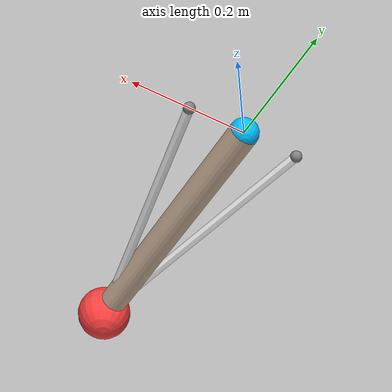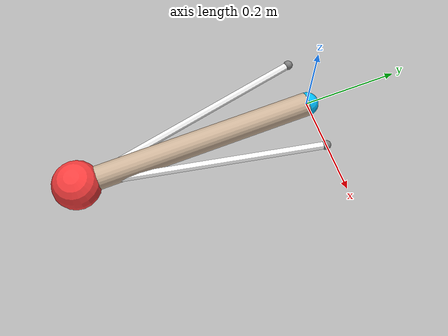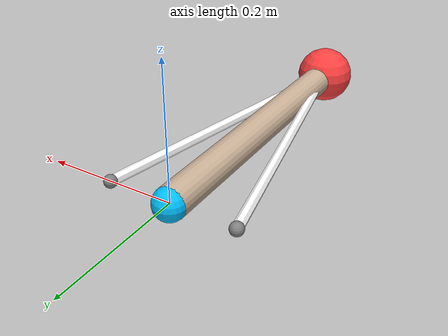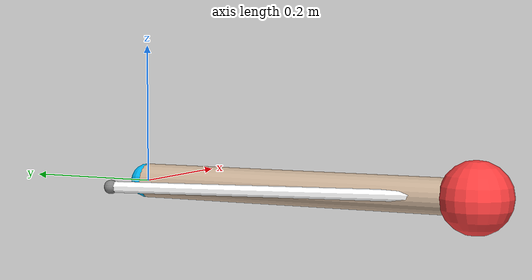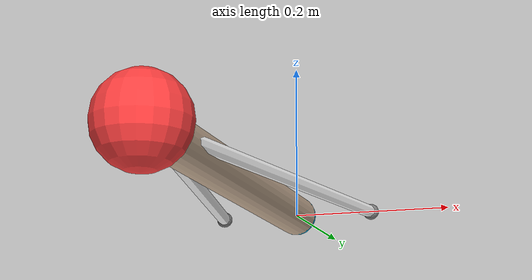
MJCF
<mujoco model="one-joint-arm">

  <visual>
    <map force="0.1" zfar="30" />
    <rgba haze="0 0 0 1" />
    <global offwidth="1920" offheight="1080" elevation="-90" azimuth="0" />
    <quality shadowsize="2048" />
    <headlight ambient="0.3 0.3 0.3" diffuse="0.8 0.8 0.8" specular="0.4 0.4 0.4"/>
  </visual>

  <asset>
    <material name="arm_mat" rgba="0.8 0.7 0.6 1" specular="0.1" shininess="0.1" reflectance="0"/>
    <material name="tendon_mat" rgba="1 1 1 1" specular="0" shininess="0" reflectance="0" emission="0.2"/>
  </asset>

  <default>
    <joint damping="0.1" />
    <muscle ctrllimited="true" ctrlrange="0 1" />
    <geom material="arm_mat" />
    <tendon material="tendon_mat" />
  </default>

  <worldbody>
    <camera name="top" mode="fixed" pos="0 0 3.5" euler="0 0 0" fovy="30"/>

    <!-- TRUNK -->
    <body name="trunk" pos="0 0 0">
      <site name="muscle1_trunk" pos="0.1 0 0" size="0.01"/>
      <site name="muscle2_trunk" pos="-0.1 0 0" size="0.01"/>

      <!-- ARM -->
      <body name="arm" pos="0 0 0">
        <joint name="shoulder" type="hinge" axis="0 0 1" range="-60 60" />
        <geom name="arm_geom" type="cylinder" size="0.025" fromto="0 0 0 0 -0.5 0" />

        <!-- HAND -->
        <body name="hand" pos="0 -0.5 0">
          <geom name="hand" type="sphere" size="0.05" pos="0 0 0" rgba="1 .25 .25 1"/>
          <site name="muscle1_hand" pos="0 0 0"/>
          <site name="muscle2_hand" pos="0 0 0"/>
          <site name="nail" pos="0 0 0"/>
        </body>
      </body>
    </body>

    <!-- TARGET -->
    <body name="target" mocap="true" pos="0 0 0">
      <geom name="target" size=".025" type="sphere" contype="0" conaffinity="0" rgba="0 .75 1 1"/>
    </body>
  </worldbody>

  <tendon>
    <spatial name="muscle1_tendon" limited="true" range="0 1" width="0.008" rgba="1 0 0 1">
      <site site="muscle1_trunk"/>
      <site site="muscle1_hand"/>
    </spatial>

    <spatial name="muscle2_tendon" limited="true" range="0 1" width="0.008" rgba="0 1 0 1">
      <site site="muscle2_trunk"/>
      <site site="muscle2_hand"/>
    </spatial>
  </tendon>

  <actuator>
    <muscle name="muscle1" tendon="muscle1_tendon" ctrlrange="0 1" force="100" timeconst=".01 .04"/>
    <muscle name="muscle2" tendon="muscle2_tendon" ctrlrange="0 1" force="100" timeconst=".01 .04"/>
  </actuator>

  <sensor>
    <actuatorpos name="muscle1_length" actuator="muscle1"/>
    <actuatorpos name="muscle2_length" actuator="muscle2"/>
    <actuatorvel name="muscle1_velocity" actuator="muscle1"/>
    <actuatorvel name="muscle2_velocity" actuator="muscle2"/>
    <actuatorfrc name="muscle1_force" actuator="muscle1"/>
    <actuatorfrc name="muscle2_force" actuator="muscle2"/>
  </sensor>

</mujoco>
